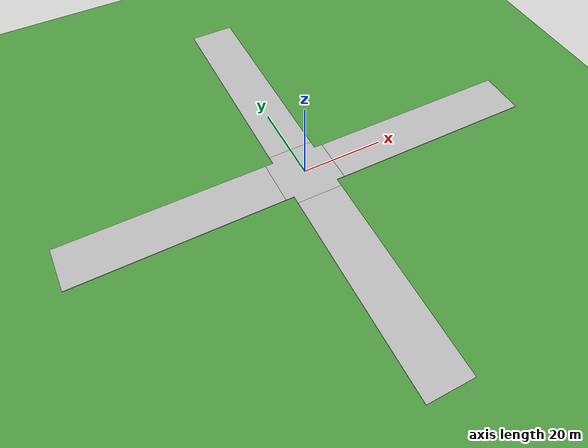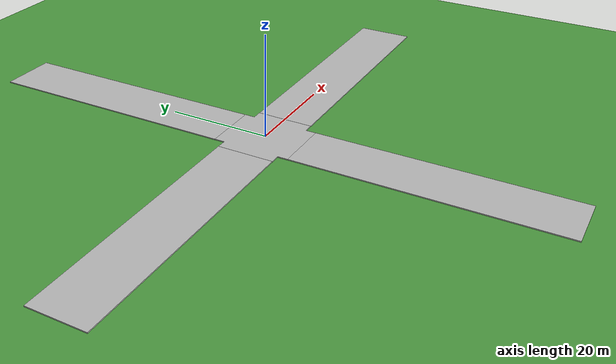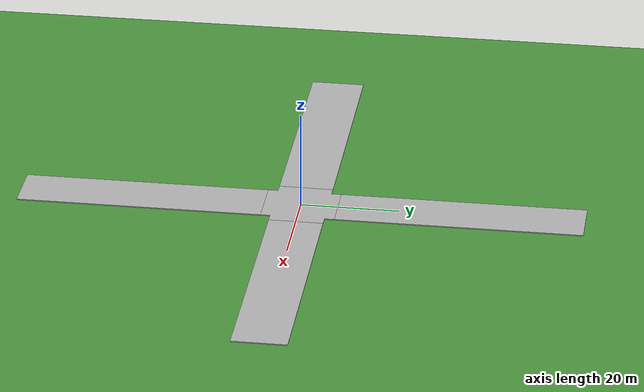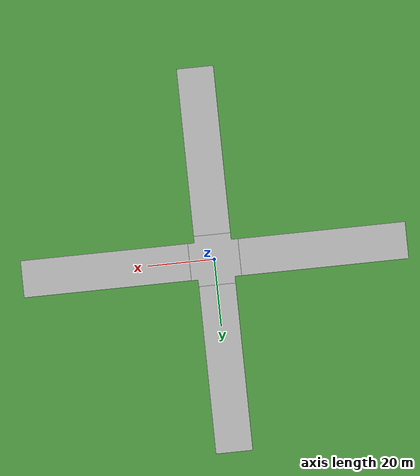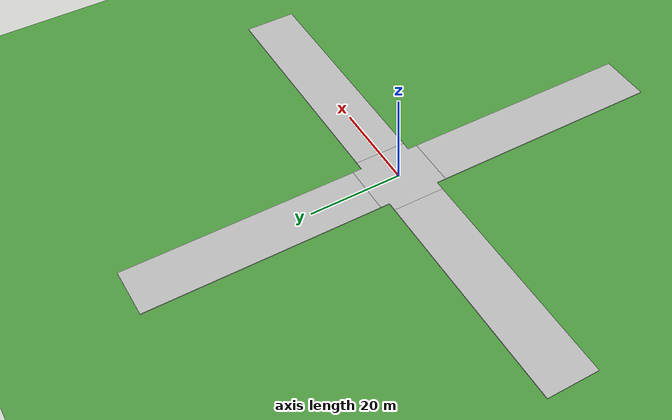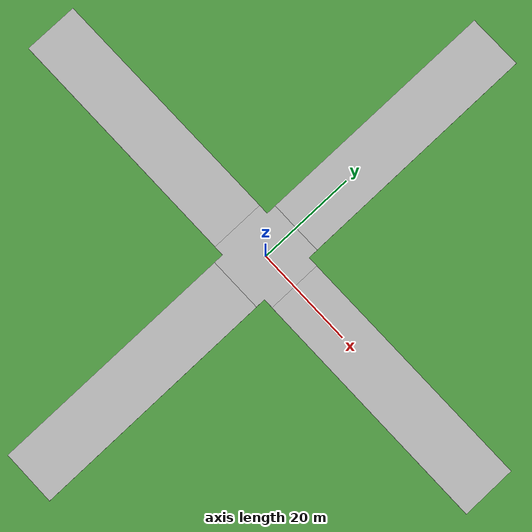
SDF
<sdf version="1.6">
 <world name="default">
  <light name="sun" type="directional">
   <pose>0 0 10 0 -0 0</pose>
   <diffuse>0.8 0.8 0.8 1</diffuse>
   <specular>0.1 0.1 0.1 1</specular>
   <attenuation>
    <range>1000</range>
    <constant>0.9</constant>
    <linear>0.01</linear>
    <quadratic>0.001</quadratic>
   </attenuation>
   <direction>-0.5 0.5 -1</direction>
  </light>
  <gravity>0 0 -9.8</gravity>
  <magnetic_field>6e-06 2.3e-05 -4.2e-05</magnetic_field>
  <atmosphere type="adiabatic"/>
  <physics name="default_physics" default="0" type="ode">
   <max_step_size>0.001</max_step_size>
   <real_time_factor>1</real_time_factor>
   <real_time_update_rate>1000</real_time_update_rate>
  </physics>
  <scene><ambient>0.4 0.4 0.4 1</ambient><background>0.7 0.7 0.7 1</background><shadows>1</shadows></scene>
  <spherical_coordinates>
   <surface_model>EARTH_WGS84</surface_model>
   <latitude_deg>0</latitude_deg>
   <longitude_deg>0</longitude_deg>
   <elevation>0</elevation>
   <heading_deg>0</heading_deg>
  </spherical_coordinates>
  <model name="grass_plane">
   <static>1</static>
   <link name="link">
    <collision name="collision">
     <geometry><plane><normal>0 0 1</normal><size>1000 1000</size></plane></geometry>
     <surface><friction><ode><mu>100</mu><mu2>50</mu2></ode></friction></surface>
    </collision>
    <visual name="visual">
     <cast_shadows>0</cast_shadows>
     <geometry><plane><normal>0 0 1</normal><size>1000 1000</size></plane></geometry>
     <material>
      <script>
       <uri>model://ds_grass_background/materials/scripts</uri>
       <uri>model://ds_grass_background/materials/textures</uri>
       <name>GrassBackground</name>
      </script>
     </material>
    </visual>
   </link>
  </model>
  <model name="(DS) Intersection">
   <static>1</static>
   <link name="link">
    <inertial>
     <mass>1</mass>
     <inertia><ixx>1</ixx><iyy>1</iyy><izz>1</izz><ixy>0</ixy><ixz>0</ixz><iyz>0</iyz></inertia>
    </inertial>
    <collision name="collision">
     <geometry>
      <mesh><uri>model://ds_intersection/meshes/intersection.dae</uri><scale>1 1 1</scale></mesh>
     </geometry>
    </collision>
    <visual name="visual">
     <geometry>
      <mesh><uri>model://ds_intersection/meshes/intersection.dae</uri><scale>1 1 1</scale></mesh>
     </geometry>
    </visual>
   </link>
  </model>
  <model name="(DS) Straight Road - 50m_0">
   <static>1</static>
   <link name="link">
    <inertial>
     <mass>1</mass>
     <inertia><ixx>1</ixx><iyy>1</iyy><izz>1</izz><ixy>0</ixy><ixz>0</ixz><iyz>0</iyz></inertia>
    </inertial>
    <collision name="collision">
     <geometry>
      <mesh><uri>model://ds_straight_road_50m/meshes/straight_road_50m.dae</uri><scale>1 1 1</scale></mesh>
     </geometry>
    </collision>
    <visual name="visual">
     <geometry>
      <mesh><uri>model://ds_straight_road_50m/meshes/straight_road_50m.dae</uri><scale>1 1 1</scale></mesh>
     </geometry>
    </visual>
   </link>
   <pose>-32.4447 10.0207 0 0 -0 0</pose>
  </model>
  <model name="(DS) Straight Road - 50m_1">
   <static>1</static>
   <link name="link">
    <inertial>
     <mass>1</mass>
     <inertia><ixx>1</ixx><iyy>1</iyy><izz>1</izz><ixy>0</ixy><ixz>0</ixz><iyz>0</iyz></inertia>
    </inertial>
    <collision name="collision">
     <geometry>
      <mesh><uri>model://ds_straight_road_50m/meshes/straight_road_50m.dae</uri><scale>1 1 1</scale></mesh>
     </geometry>
    </collision>
    <visual name="visual">
     <geometry>
      <mesh><uri>model://ds_straight_road_50m/meshes/straight_road_50m.dae</uri><scale>1 1 1</scale></mesh>
     </geometry>
    </visual>
   </link>
   <pose>-10.017 32.4802 0 0 -0 1.5707</pose>
  </model>
  <model name="(DS) Straight Road - 50m_1_clone">
   <static>1</static>
   <link name="link">
    <inertial>
     <mass>1</mass>
     <inertia><ixx>1</ixx><iyy>1</iyy><izz>1</izz><ixy>0</ixy><ixz>0</ixz><iyz>0</iyz></inertia>
    </inertial>
    <collision name="collision">
     <geometry>
      <mesh><uri>model://ds_straight_road_50m/meshes/straight_road_50m.dae</uri><scale>1 1 1</scale></mesh>
     </geometry>
    </collision>
    <visual name="visual">
     <geometry>
      <mesh><uri>model://ds_straight_road_50m/meshes/straight_road_50m.dae</uri><scale>1 1 1</scale></mesh>
     </geometry>
    </visual>
   </link>
   <pose>-9.98609 -32.4654 0 0 -0 1.5707</pose>
  </model>
  <model name="(DS) Straight Road - 50m_0_clone">
   <static>1</static>
   <link name="link">
    <inertial>
     <mass>1</mass>
     <inertia><ixx>1</ixx><iyy>1</iyy><izz>1</izz><ixy>0</ixy><ixz>0</ixz><iyz>0</iyz></inertia>
    </inertial>
    <collision name="collision">
     <geometry>
      <mesh><uri>model://ds_straight_road_50m/meshes/straight_road_50m.dae</uri><scale>1 1 1</scale></mesh>
     </geometry>
    </collision>
    <visual name="visual">
     <geometry>
      <mesh><uri>model://ds_straight_road_50m/meshes/straight_road_50m.dae</uri><scale>1 1 1</scale></mesh>
     </geometry>
    </visual>
   </link>
   <pose>32.4576 9.97196 0 0 -0 0</pose>
  </model>
 </world>
</sdf>
